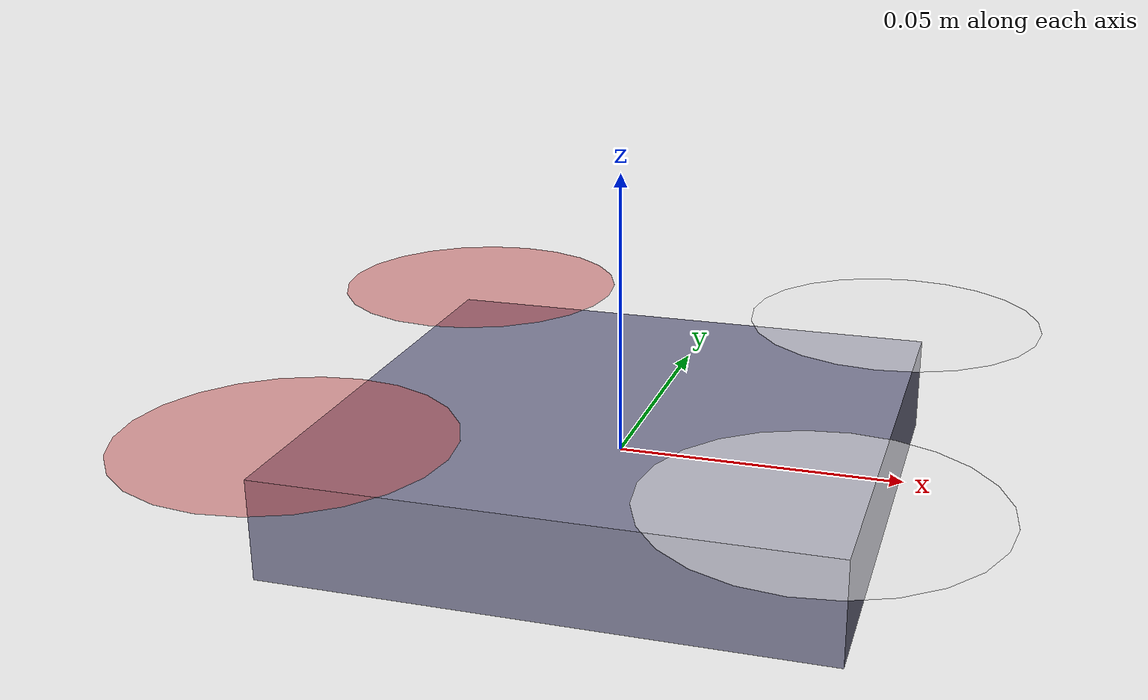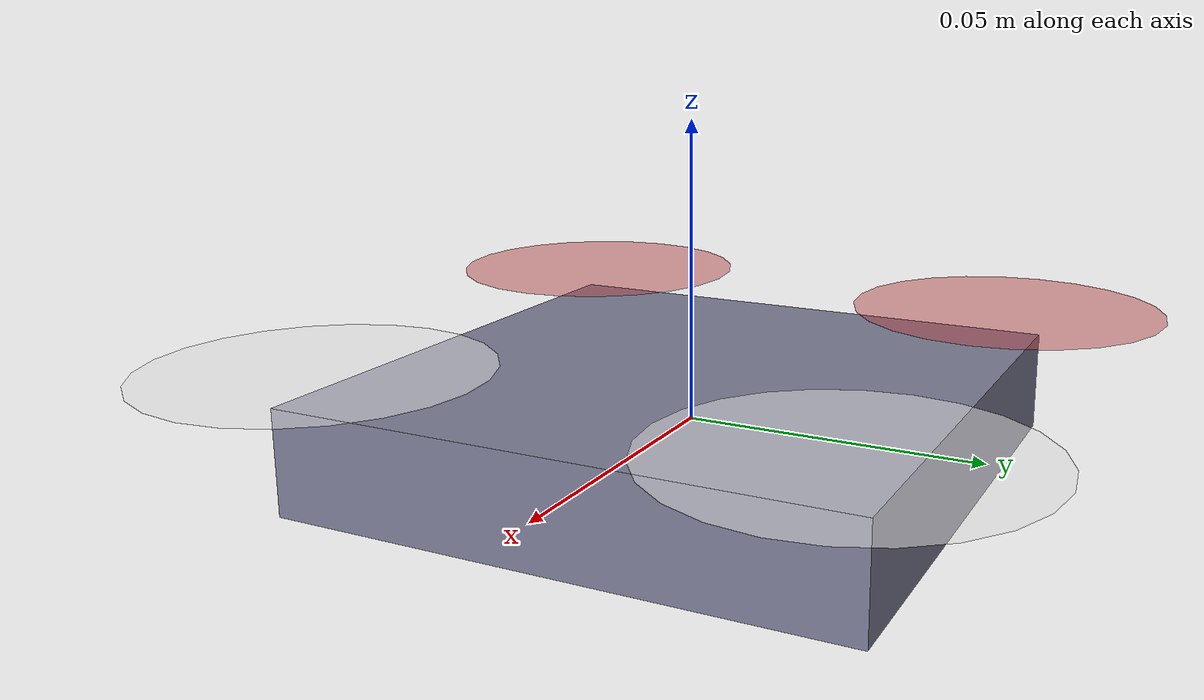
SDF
<?xml version="1.0"?>
<sdf version="1.5">
	<model name="flix">
		<link name="body">
			<inertial>
				<mass>0.392</mass>
				<inertia>
					<ixx>0.000319700826667</ixx>
					<iyy>0.000319700826667</iyy>
					<izz>0.000589633333334</izz>
				</inertia>
			</inertial>
			<collision name="collision">
				<geometry>
					<box>
						<size>0.095 0.095 0.0276</size>
					</box>
				</geometry>
			</collision>
			<sensor name="imu_sensor" type="imu">
				<always_on>1</always_on>
				<visualize>1</visualize>
				<update_rate>1000</update_rate>
				<topic>imu</topic>
			</sensor>
			<visual name="body">
				<geometry>
					<box>
						<size>0.095 0.095 0.0176</size>
					</box>
				</geometry>
				<material>
					<ambient>0.5 0.5 0.6 1</ambient>
					<diffuse>0.5 0.5 0.6 1</diffuse>
					<specular>0 0 0 1</specular>
					<emissive>0 0 0 1</emissive>
				</material>
			</visual>
			<visual name="prop0"><!-- rear left -->
				<geometry><cylinder><radius>0.0275</radius><length>0.0001</length></cylinder></geometry>
				<pose>-0.04243 0.04243 0.0142 0 0 0</pose>
				<material><ambient>0.8 0.3 0.3 0.5</ambient><diffuse>0.8 0.3 0.3 0.5</diffuse></material>
			</visual>
			<visual name="prop1"><!-- rear right -->
				<geometry><cylinder><radius>0.0275</radius><length>0.0001</length></cylinder></geometry>
				<pose>-0.04243 -0.04243 0.0142 0 0 0</pose>
				<material><ambient>0.8 0.3 0.3 0.5</ambient><diffuse>0.8 0.3 0.3 0.5</diffuse></material>
			</visual>
			<visual name="prop2"><!-- front right -->
				<geometry><cylinder><radius>0.0275</radius><length>0.0001</length></cylinder></geometry>
				<pose>0.04243 -0.04243 0.0142 0 0 0</pose>
				<material><ambient>1 1 1 0.5</ambient><diffuse>1 1 1 0.5</diffuse></material>
			</visual>
			<visual name="prop3"><!-- front left -->
				<geometry><cylinder><radius>0.0275</radius><length>0.0001</length></cylinder></geometry>
				<pose>0.04243 0.04243 0.0142 0 0 0</pose>
				<material><ambient>1 1 1 0.5</ambient><diffuse>1 1 1 0.5</diffuse></material>
			</visual>

		</link>
		<plugin filename="Iflight" name="iflight::Iflight">
		</plugin>
		<plugin filename="gz-sim-imu-system"
        name="gz::sim::systems::Imu">
		</plugin>
	</model>
</sdf>
